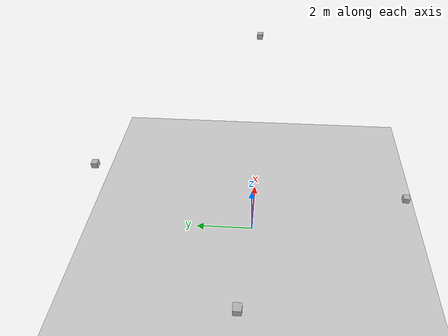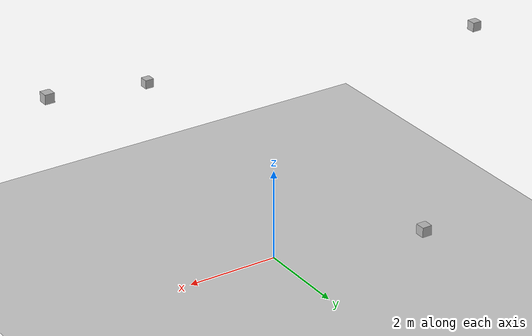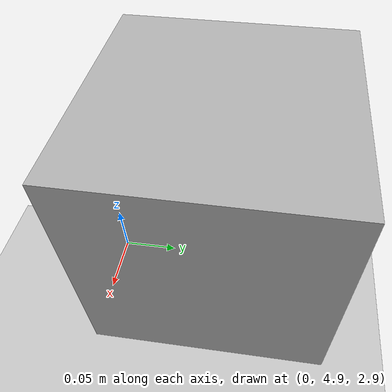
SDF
<sdf version="1.4">
  <world name="default">

  <model name="uwb_anchor0">
      <pose>5 0 5 0 0 0</pose>
      <static>1</static>
      <link name="link">
        <visual name="visual">
          <geometry>
            <box>
              <size>0.2 0.2 0.2</size>
            </box>
          </geometry>
        </visual>
      </link>
    </model>

    <model name="uwb_anchor1">
      <pose>-5 0 4 0 0 0</pose>
      <static>1</static>
      <link name="link">
        <visual name="visual">
          <geometry>
            <box>
              <size>0.2 0.2 0.2</size>
            </box>
          </geometry>
        </visual>
      </link>
    </model>

    <model name="uwb_anchor2">
      <pose>0 5 3 0 0 0</pose>
      <static>1</static>
      <link name="link">
        <visual name="visual">
          <geometry>
            <box>
              <size>0.2 0.2 0.2</size>
            </box>
          </geometry>
        </visual>
      </link>
    </model>

    <model name="uwb_anchor3">
      <pose>0 -5 2 0 0 0</pose>
      <static>1</static>
      <link name="link">
        <visual name="visual">
          <geometry>
            <box>
              <size>0.2 0.2 0.2</size>
            </box>
          </geometry>
        </visual>
      </link>
    </model>

    <scene>
      <ambient>0.4 0.4 0.4 1</ambient>
      <background>0.7 0.7 0.7 1</background>
      <shadows>true</shadows>
    </scene>

    <!-- A global light source -->
    <include>
      <uri>model://sun</uri>
    </include>

    <!-- A ground plane -->
    <include>
      <uri>model://ground_plane</uri>
    </include>

    <physics type="ode">
      <real_time_update_rate>1000.0</real_time_update_rate>
      <max_step_size>0.001</max_step_size>
      <real_time_factor>1</real_time_factor>
      <ode>
        <solver>
          <type>quick</type>
          <iters>150</iters>
          <precon_iters>0</precon_iters>
          <sor>1.400000</sor>
          <use_dynamic_moi_rescaling>1</use_dynamic_moi_rescaling>
        </solver>
        <constraints>
          <cfm>0.00001</cfm>
          <erp>0.2</erp>
          <contact_max_correcting_vel>2000.000000</contact_max_correcting_vel>
          <contact_surface_layer>0.01000</contact_surface_layer>
        </constraints>
      </ode>
    </physics>
  </world>

</sdf>
